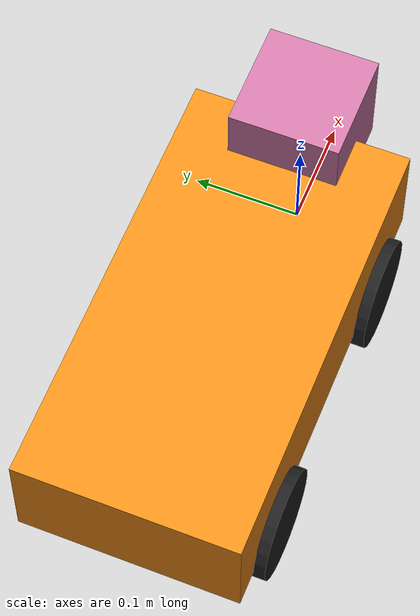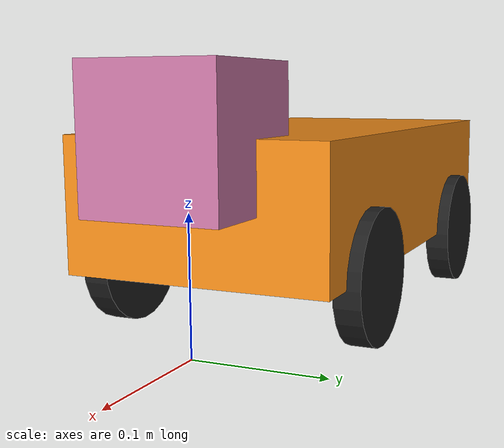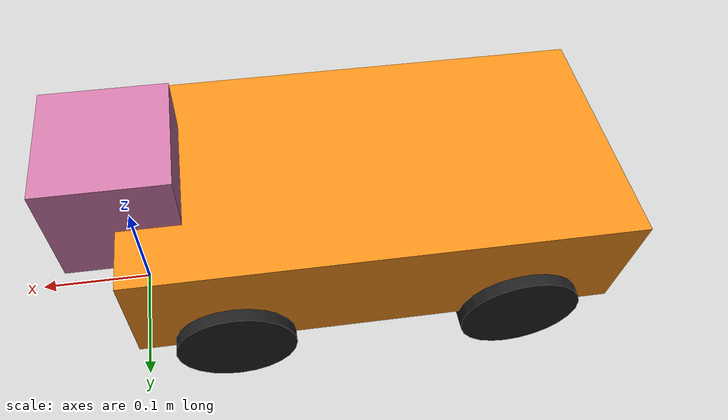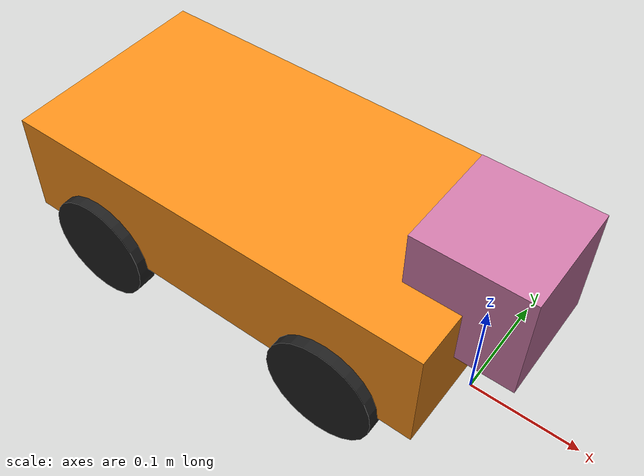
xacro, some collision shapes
<?xml version="1.0"?>

<robot name="mybot" xmlns:xacro="http://www.ros.org/wiki/xacro">
        <!-- Put here the robot description -->

<xacro:property name="PI" value="3.1415926535897931"/>

<xacro:property name="chassisHeight" value="0.1" />
<xacro:property name="chassisLength" value="0.4"/>
<xacro:property name="chassisWidth" value="0.2"/>
<xacro:property name="chassisMass" value="50"/>

<xacro:property name="laserPosHeight" value="0.15"/>

<xacro:property name="wheelWidth" value="0.02"/>
<xacro:property name="wheelRadius" value="0.05"/>
<xacro:property name="wheelPos" value="0.2"/>
<xacro:property name="wheelMass" value="5"/>

<xacro:property name="cameraSize" value="0.05"/>
<xacro:property name="cameraMass" value="0.1"/>

<xacro:include filename="$(find mybot_description)/urdf/mybot.gazebo" />
<xacro:include filename="$(find mybot_description)/urdf/materials.xacro" />
<xacro:include filename="$(find mybot_description)/urdf/macros.xacro" />

<link name="base_link" />

<joint name="base_joint" type="fixed">
  <parent link="base_link"/>
  <child link="chassis"/>
  <origin xyz="${-chassisLength/2} 0 0" rpy="0 0 0" />
  <axis xyz="1 0 0" rpy="0 0 0" />
</joint>

<link name='chassis'>
  <collision>
    <origin xyz="0 0 ${wheelRadius+chassisHeight/2}" rpy="0 0 0"/>
    <geometry>
      <box size="${chassisLength} ${chassisWidth} ${chassisHeight}"/>
    </geometry>
  </collision>
  <visual>
    <origin xyz="0 0 ${wheelRadius+chassisHeight/2}" rpy="0 0 0"/>
    <geometry>
      <box size="${chassisLength} ${chassisWidth} ${chassisHeight}"/>
    </geometry>
    <material name="orange"/>
  </visual>
  <inertial>
    <origin xyz="0 0 ${wheelRadius+chassisHeight/2}" rpy="0 0 0"/>
    <mass value="${chassisMass}"/>
    <box_inertia m="${chassisMass}" x="${chassisLength}" y="${chassisWidth}" z="${chassisHeight}"/>
  </inertial>
</link>

<wheel lr="front_left" tX="0.6" tY="1"/>
<wheel lr="front_right" tX="0.6" tY="-1"/>
<wheel lr="back_left" tX="-0.6" tY="1"/>
<wheel lr="back_right" tX="-0.6" tY="-1"/>

<joint name="laser_joint" type="fixed">
  <axis xyz="0 1 0" />
  <origin xyz="0 0 ${laserPosHeight}" rpy="0 0 0"/>
  <parent link="base_link"/>
  <child link="laser"/>
</joint>

<!-- Hokuyo Laser -->
<link name="laser">
  <collision>
    <origin xyz="0 0 0" rpy="0 0 0"/>
    <geometry>
  <box size="0.1 0.1 0.1"/>
    </geometry>
  </collision>

  <visual>
    <origin xyz="0 0 0" rpy="0 0 0"/>
    <geometry>
      <mesh filename="package://mybot_description/meshes/hokuyo.dae"/>
    </geometry>
  </visual>

  <inertial>
    <mass value="1e-5" />
    <origin xyz="0 0 0" rpy="0 0 0"/>
    <inertia ixx="1e-6" ixy="0" ixz="0" iyy="1e-6" iyz="0" izz="1e-6" />
  </inertial>
</link>

</robot>

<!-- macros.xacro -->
<robot>

<macro name="cylinder_inertia" params="m r h">
  <inertia  ixx="${m*(3*r*r+h*h)/12}" ixy = "0" ixz = "0"
    iyy="${m*(3*r*r+h*h)/12}" iyz = "0"
    izz="${m*r*r/2}"
  />
</macro>

<macro name="box_inertia" params="m x y z">
  <inertia  ixx="${m*(y*y+z*z)/12}" ixy = "0" ixz = "0"
    iyy="${m*(x*x+z*z)/12}" iyz = "0"
    izz="${m*(x*x+z*z)/12}"
  />
</macro>

<macro name="sphere_inertia" params="m r">
  <inertia  ixx="${2*m*r*r/5}" ixy = "0" ixz = "0"
    iyy="${2*m*r*r/5}" iyz = "0"
    izz="${2*m*r*r/5}"
  />
</macro>

<macro name="wheel" params="lr tX tY">

  <link name="${lr}_wheel">
    <collision>
      <origin xyz="0 0 0" rpy="0 ${PI/2} ${PI/2}" />
      <geometry>
	<cylinder length="${wheelWidth}" radius="${wheelRadius}"/>
      </geometry>
    </collision>

    <visual>
      <origin xyz="0 0 0" rpy="0 ${PI/2} ${PI/2}" />
      <geometry>
	<cylinder length="${wheelWidth}" radius="${wheelRadius}"/>
      </geometry>
      <material name="black"/>
    </visual>

    <inertial>
      <origin xyz="0 0 0" rpy="0 ${PI/2} ${PI/2}" />
      <mass value="${wheelMass}"/>
      <cylinder_inertia m="${wheelMass}" r="${wheelRadius}" h="${wheelWidth}"/>
    </inertial>
  </link>

  <gazebo reference="${lr}_wheel">
    <material>Gazebo/Black</material>
  </gazebo>

  <joint name="${lr}_wheel_joint" type="continuous">
    <parent link="chassis"/>
    <child link="${lr}_wheel"/>
    <origin xyz="${tX*chassisLength/2} ${tY*chassisWidth/2} ${wheelRadius}" rpy="0 0 0" />
    <axis xyz="0 1 0" rpy="0 0 0" />
    <limit effort="100" velocity="100"/>
    <joint_properties damping="0.0" friction="0.0"/>
  </joint>

  <transmission name="${lr}_trans">
    <type>transmission_interface/SimpleTransmission</type>
    <joint name="${lr}_wheel_joint">
      <hardwareInterface>EffortJointInterface</hardwareInterface>
    </joint>
    <actuator name="${lr}Motor">
      <hardwareInterface>EffortJointInterface</hardwareInterface>
      <mechanicalReduction>10</mechanicalReduction>
    </actuator>
  </transmission>

</macro>

</robot>
